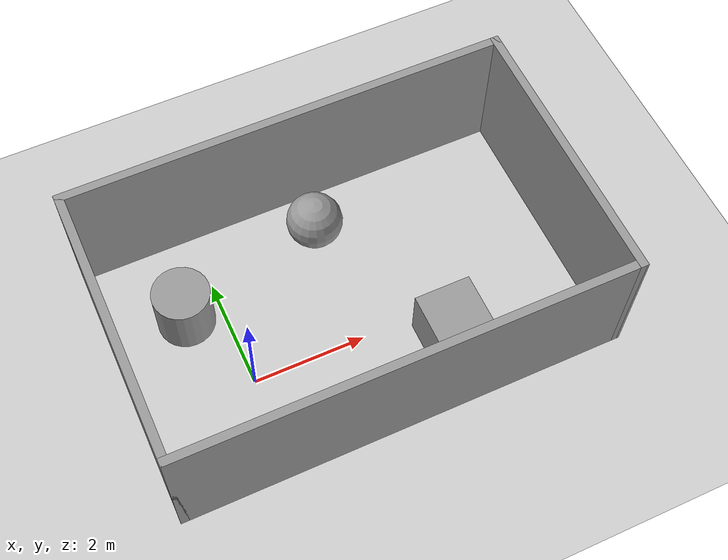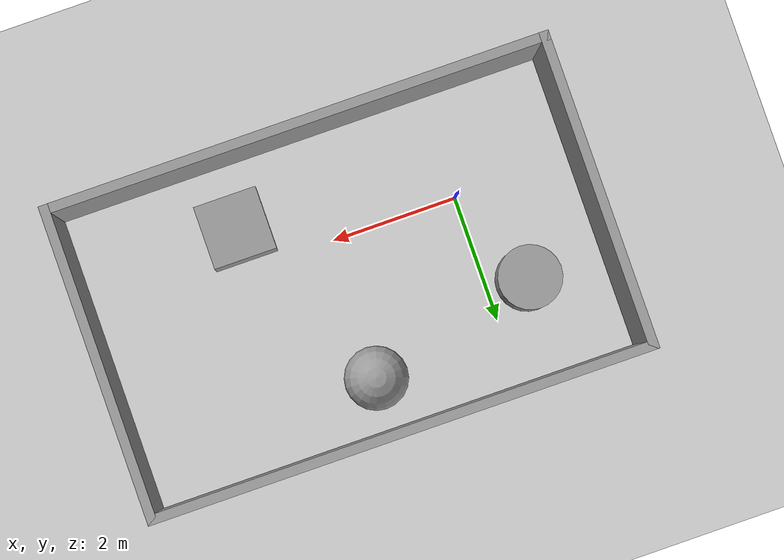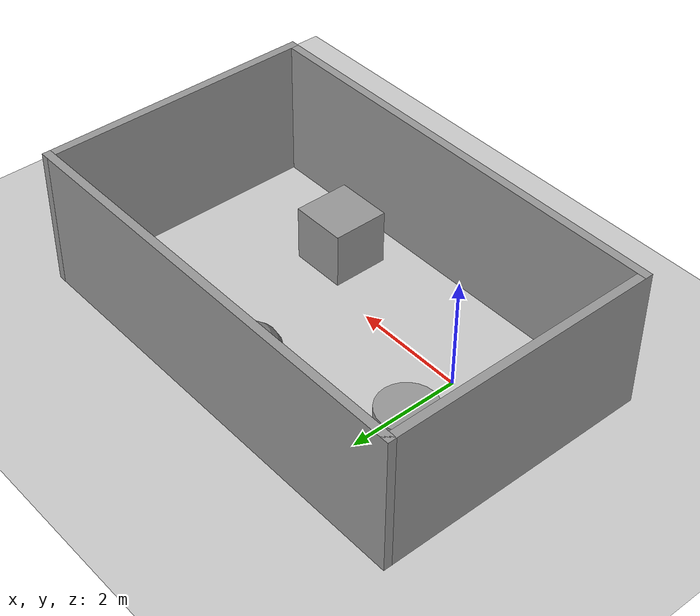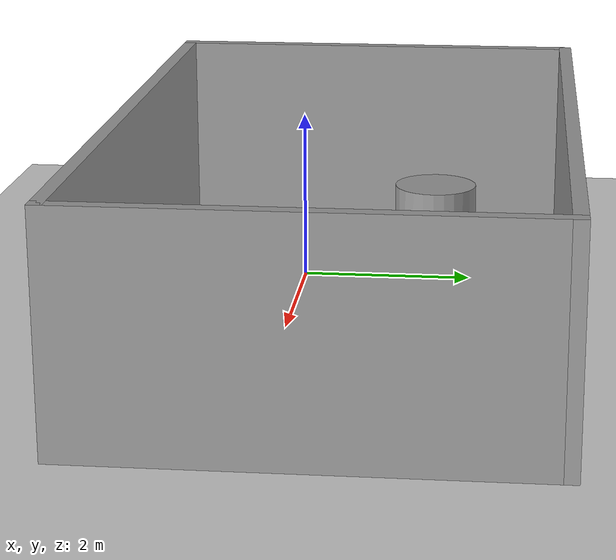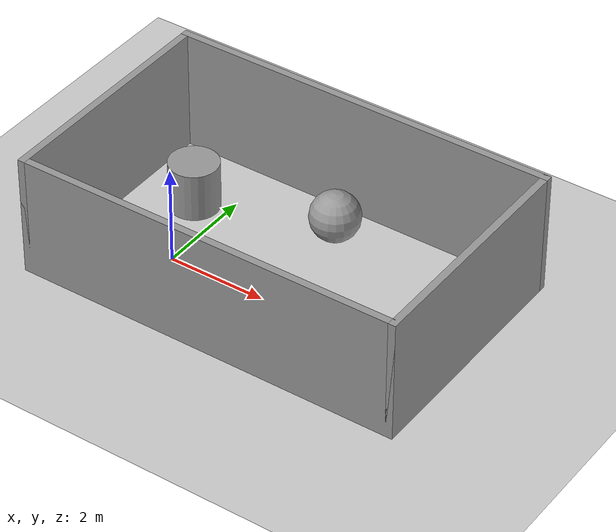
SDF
<sdf version="1.7">
 <world name="default">
  <light name="sun" type="directional">
   <pose>0 0 10 0 -0 0</pose>
   <diffuse>0.8 0.8 0.8 1</diffuse>
   <specular>0.2 0.2 0.2 1</specular>
   <attenuation>
    <range>1000</range>
    <constant>0.9</constant>
    <linear>0.01</linear>
    <quadratic>0.001</quadratic>
   </attenuation>
   <direction>-0.5 0.1 -0.9</direction>
   <spot><inner_angle>0</inner_angle><outer_angle>0</outer_angle><falloff>0</falloff></spot>
  </light>
  <model name="ground_plane">
   <static>1</static>
   <link name="link">
    <collision name="collision">
     <geometry><plane><normal>0 0 1</normal><size>100 100</size></plane></geometry>
     <surface>
      <contact><collide_bitmask>65535</collide_bitmask></contact>
      <friction><ode><mu>100</mu><mu2>50</mu2></ode></friction>
     </surface>
    </collision>
    <visual name="visual">
     <cast_shadows>0</cast_shadows>
     <geometry><plane><normal>0 0 1</normal><size>100 100</size></plane></geometry>
     <material>
      <script><uri>file://media/materials/scripts/gazebo.material</uri><name>Gazebo/Grey</name></script>
     </material>
    </visual>
   </link>
  </model>
  <gravity>0 0 -9.8</gravity>
  <magnetic_field>6e-06 2.3e-05 -4.2e-05</magnetic_field>
  <atmosphere type="adiabatic"/>
  <physics type="ode">
   <max_step_size>0.001</max_step_size>
   <real_time_factor>1</real_time_factor>
   <real_time_update_rate>1000</real_time_update_rate>
  </physics>
  <scene><ambient>0.4 0.4 0.4 1</ambient><background>0.7 0.7 0.7 1</background><shadows>1</shadows></scene>
  <spherical_coordinates>
   <surface_model>EARTH_WGS84</surface_model>
   <latitude_deg>0</latitude_deg>
   <longitude_deg>0</longitude_deg>
   <elevation>0</elevation>
   <heading_deg>0</heading_deg>
  </spherical_coordinates>
  <model name="Walls">
   <pose>1.99238 0.702501 0 0 -0 0</pose>
   <link name="Wall_10">
    <collision name="Wall_10_Collision">
     <geometry><box><size>5 0.15 2.5</size></box></geometry>
     <pose>0 0 1.25 0 -0 0</pose>
    </collision>
    <visual name="Wall_10_Visual">
     <pose>0 0 1.25 0 -0 0</pose>
     <geometry><box><size>5 0.15 2.5</size></box></geometry>
     <material>
      <script><uri>file://media/materials/scripts/gazebo.material</uri><name>Gazebo/Grey</name></script>
      <ambient>1 1 1 1</ambient>
     </material>
     <meta><layer>0</layer></meta>
    </visual>
    <pose>3.925 -0 0 0 -0 1.5708</pose>
   </link>
   <link name="Wall_11">
    <collision name="Wall_11_Collision">
     <geometry><box><size>8 0.15 2.5</size></box></geometry>
     <pose>0 0 1.25 0 -0 0</pose>
    </collision>
    <visual name="Wall_11_Visual">
     <pose>0 0 1.25 0 -0 0</pose>
     <geometry><box><size>8 0.15 2.5</size></box></geometry>
     <material>
      <script><uri>file://media/materials/scripts/gazebo.material</uri><name>Gazebo/Grey</name></script>
      <ambient>1 1 1 1</ambient>
     </material>
     <meta><layer>0</layer></meta>
    </visual>
    <pose>0 2.425 0 0 -0 3.14159</pose>
   </link>
   <link name="Wall_12">
    <collision name="Wall_12_Collision">
     <geometry><box><size>5 0.15 2.5</size></box></geometry>
     <pose>0 0 1.25 0 -0 0</pose>
    </collision>
    <visual name="Wall_12_Visual">
     <pose>0 0 1.25 0 -0 0</pose>
     <geometry><box><size>5 0.15 2.5</size></box></geometry>
     <material>
      <script><uri>file://media/materials/scripts/gazebo.material</uri><name>Gazebo/Grey</name></script>
      <ambient>1 1 1 1</ambient>
     </material>
     <meta><layer>0</layer></meta>
    </visual>
    <pose>-3.925 -0 0 0 -0 -1.5708</pose>
   </link>
   <link name="Wall_9">
    <collision name="Wall_9_Collision">
     <geometry><box><size>8 0.15 2.5</size></box></geometry>
     <pose>0 0 1.25 0 -0 0</pose>
    </collision>
    <visual name="Wall_9_Visual">
     <pose>0 0 1.25 0 -0 0</pose>
     <geometry><box><size>8 0.15 2.5</size></box></geometry>
     <material>
      <script><uri>file://media/materials/scripts/gazebo.material</uri><name>Gazebo/Grey</name></script>
      <ambient>1 1 1 1</ambient>
     </material>
     <meta><layer>0</layer></meta>
    </visual>
    <pose>0 -2.425 0 0 -0 0</pose>
   </link>
   <static>1</static>
  </model>
  <model name="unit_cylinder">
   <pose>-0.640433 1.55437 0.499997 3e-06 4e-06 -0</pose>
   <link name="link">
    <inertial>
     <mass>1</mass>
     <inertia><ixx>0.145833</ixx><ixy>0</ixy><ixz>0</ixz><iyy>0.145833</iyy><iyz>0</iyz><izz>0.125</izz></inertia>
    </inertial>
    <collision name="collision">
     <geometry><cylinder><radius>0.5</radius><length>1</length></cylinder></geometry>
    </collision>
    <visual name="visual">
     <geometry><cylinder><radius>0.5</radius><length>1</length></cylinder></geometry>
     <material>
      <script><name>Gazebo/Grey</name><uri>file://media/materials/scripts/gazebo.material</uri></script>
     </material>
    </visual>
   </link>
  </model>
  <model name="unit_box">
   <pose>3.3629 -0.636827 0.499995 -1e-05 -0 0</pose>
   <link name="link">
    <inertial>
     <mass>1</mass>
     <inertia>
      <ixx>0.166667</ixx>
      <ixy>0</ixy>
      <ixz>0</ixz>
      <iyy>0.166667</iyy>
      <iyz>0</iyz>
      <izz>0.166667</izz>
     </inertia>
    </inertial>
    <collision name="collision"><geometry><box><size>1 1 1</size></box></geometry></collision>
    <visual name="visual">
     <geometry><box><size>1 1 1</size></box></geometry>
     <material>
      <script><name>Gazebo/Grey</name><uri>file://media/materials/scripts/gazebo.material</uri></script>
     </material>
    </visual>
   </link>
  </model>
  <model name="unit_sphere">
   <pose>2.0761 2.23626 0.5 0 -0 0</pose>
   <link name="link">
    <inertial>
     <mass>1</mass>
     <inertia><ixx>0.1</ixx><ixy>0</ixy><ixz>0</ixz><iyy>0.1</iyy><iyz>0</iyz><izz>0.1</izz></inertia>
    </inertial>
    <collision name="collision"><geometry><sphere><radius>0.5</radius></sphere></geometry></collision>
    <visual name="visual">
     <geometry><sphere><radius>0.5</radius></sphere></geometry>
     <material>
      <script><name>Gazebo/Grey</name><uri>file://media/materials/scripts/gazebo.material</uri></script>
     </material>
    </visual>
   </link>
  </model>
 </world>
</sdf>
